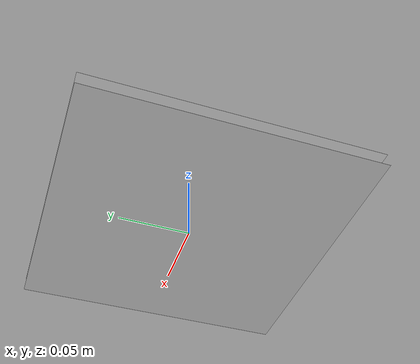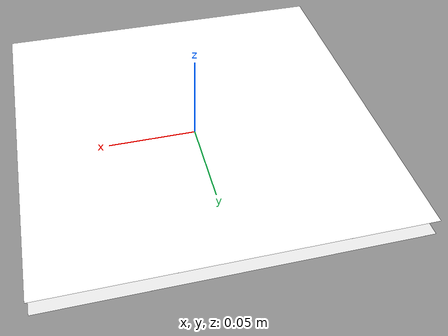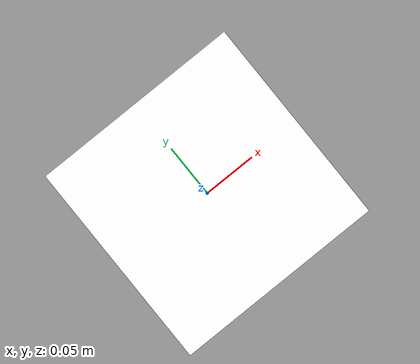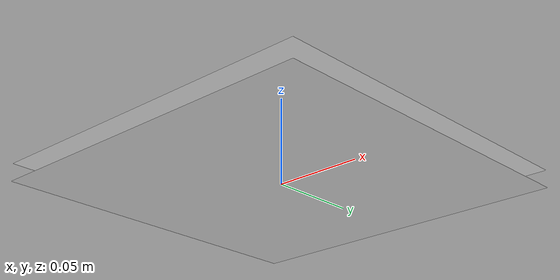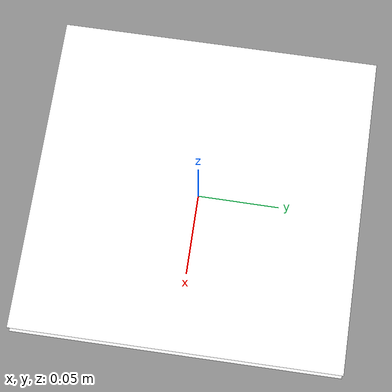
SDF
<?xml version='1.0'?>
<sdf version='1.5'>
  <model name='aruco_visual_marker_7_circle'>

    <link name='marker'>
      <pose frame=''>0 0 0 0 0 0</pose>
      <visual name='visual'>
        <geometry>
          <box>
            <size>0.2 0.2 0.000001</size>
          </box>
        </geometry>
        <material>
          <script>
            <uri>model://aruco_visual_marker_7_circle/materials/scripts</uri>
            <uri>model://aruco_visual_marker_7_circle/materials/textures</uri>
            <name>ArucoVisualMarker7Circle/Marker</name>
          </script>
          <ambient>1 1 1 1</ambient>
          <diffuse>1 1 1 1</diffuse>
          <specular>0 0 0 1</specular>
          <emissive>1 1 1 0</emissive>
          <shader type='vertex'>
            <normal_map>__default__</normal_map>
          </shader>
        </material>
        <pose frame=''>0 0 0.01 0 -0 0</pose>
        <cast_shadows>1</cast_shadows>
        <transparency>0</transparency>
      </visual>
      <collision name='collision'>
        <laser_retro>0</laser_retro>
        <max_contacts>10</max_contacts>
        <pose frame=''>0 0 0 0 -0 0</pose>
        <geometry>
          <box>
            <size>0.2 0.2 0.000001</size>
          </box>
        </geometry>
        <surface>
          <friction>
            <ode>
              <mu>10000</mu>
              <mu2>10000</mu2>
            </ode>
          </friction>
          </surface>
      </collision>
    </link>

    <link name='marker_pad'>
      <pose frame='marker'>0 0 0 0 -0 0</pose>
      <visual name='visual'>
        <geometry>
          <box>
            <size>0.2 0.2 0.000001</size>
          </box>
        </geometry>
        <material>
          <lighting>1</lighting>
          <script>
            <uri>file://media/materials/scripts/gazebo.material</uri>
            <name>Gazebo/White</name>
          </script>
          <ambient>1 1 1 1</ambient>
          <diffuse>1 1 1 1</diffuse>
          <specular>0 0 0 1</specular>
          <emissive>1 1 1 0</emissive>
          <shader type='vertex'>
            <normal_map>__default__</normal_map>
          </shader>
        </material>
        <cast_shadows>1</cast_shadows>
        <transparency>0</transparency>
      </visual>
      <collision name='collision'>
        <laser_retro>0</laser_retro>
        <max_contacts>10</max_contacts>
        <pose frame=''>0 0 0 0 -0 0</pose>
        <geometry>
          <box>
            <size>0.2 0.2 0.000001</size>
          </box>
        </geometry>
      <surface>
         <friction>
          <ode>
           <mu>10000</mu>
           <mu2>10000</mu2>
          </ode>
         </friction>
        </surface>
      </collision>
    </link>

    <joint name='marker_JOINT_marker_pad' type='fixed'>
      <parent>marker</parent>
      <child>marker_pad</child>
      <pose frame=''>0 0 0 0 -0 0</pose>
      <axis>
        <xyz>0 0 1</xyz>
        <limit>
          <upper>0</upper>
          <lower>0</lower>
        </limit>
      </axis>
    </joint>

    <static>1</static>
    <allow_auto_disable>1</allow_auto_disable>

  </model>
</sdf>
